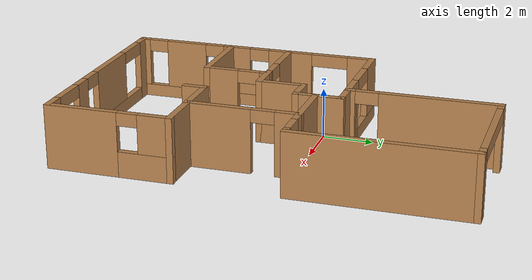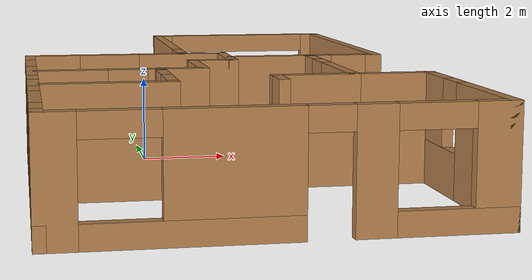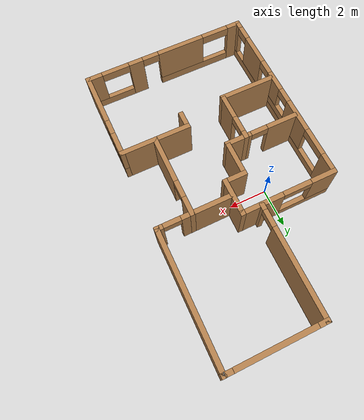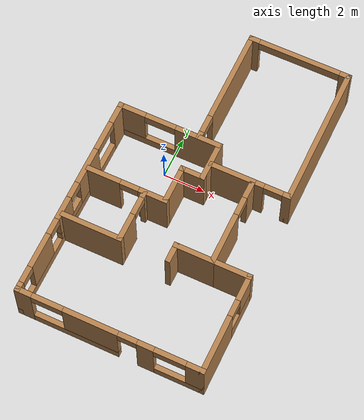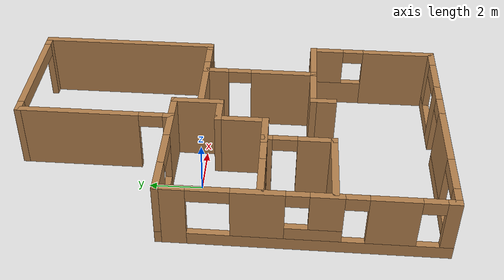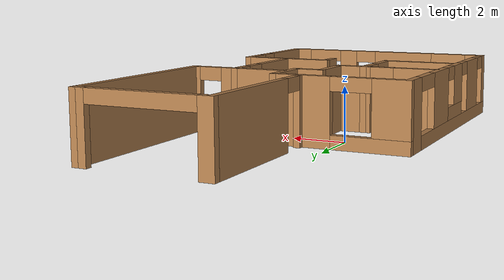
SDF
<?xml version='1.0'?>
<sdf version='1.6'>
  <model name='mybuilding'>
    <pose frame=''>1.625 -0.875 0 0 -0 0</pose>
    <link name='Wall_0'>
      <pose frame=''>1.95 7.875 0 0 -0 3.14159</pose>
      <visual name='Wall_0_Visual_0'>
        <pose frame=''>-2.27407 0 1.25 0 -0 0</pose>
        <geometry>
          <box>
            <size>0.551856 0.25 2.5</size>
          </box>
        </geometry>
        <material>
          <script>
            <uri>file://media/materials/scripts/gazebo.material</uri>
            <name>Gazebo/Wood</name>
          </script>
          <ambient>1 1 1 1</ambient>
        </material>
        <meta>
          <layer>0</layer>
        </meta>
      </visual>
      <collision name='Wall_0_Collision_0'>
        <geometry>
          <box>
            <size>0.551856 0.25 2.5</size>
          </box>
        </geometry>
        <pose frame=''>-2.27407 0 1.25 0 -0 0</pose>
      </collision>
      <visual name='Wall_0_Visual_1'>
        <pose frame=''>2.27593 0 1.25 0 -0 0</pose>
        <geometry>
          <box>
            <size>0.548144 0.25 2.5</size>
          </box>
        </geometry>
        <material>
          <script>
            <uri>file://media/materials/scripts/gazebo.material</uri>
            <name>Gazebo/Wood</name>
          </script>
          <ambient>1 1 1 1</ambient>
        </material>
        <meta>
          <layer>0</layer>
        </meta>
      </visual>
      <collision name='Wall_0_Collision_1'>
        <geometry>
          <box>
            <size>0.548144 0.25 2.5</size>
          </box>
        </geometry>
        <pose frame=''>2.27593 0 1.25 0 -0 0</pose>
      </collision>
      <visual name='Wall_0_Visual_2'>
        <pose frame=''>0.001856 0 2.25 0 -0 0</pose>
        <geometry>
          <box>
            <size>4 0.25 0.5</size>
          </box>
        </geometry>
        <material>
          <script>
            <uri>file://media/materials/scripts/gazebo.material</uri>
            <name>Gazebo/Wood</name>
          </script>
          <ambient>1 1 1 1</ambient>
        </material>
        <meta>
          <layer>0</layer>
        </meta>
      </visual>
      <collision name='Wall_0_Collision_2'>
        <geometry>
          <box>
            <size>4 0.25 0.5</size>
          </box>
        </geometry>
        <pose frame=''>0.001856 0 2.25 0 -0 0</pose>
      </collision>
    </link>
    <link name='Wall_1'>
      <pose frame=''>-0.475 5 0 0 0 -1.5708</pose>
      <visual name='Wall_1_Visual_0'>
        <pose frame=''>-0.6625 0 1.25 0 -0 0</pose>
        <geometry>
          <box>
            <size>4.675 0.25 2.5</size>
          </box>
        </geometry>
        <material>
          <script>
            <uri>file://media/materials/scripts/gazebo.material</uri>
            <name>Gazebo/Wood</name>
          </script>
          <ambient>1 1 1 1</ambient>
        </material>
        <meta>
          <layer>0</layer>
        </meta>
      </visual>
      <collision name='Wall_1_Collision_0'>
        <geometry>
          <box>
            <size>4.675 0.25 2.5</size>
          </box>
        </geometry>
        <pose frame=''>-0.6625 0 1.25 0 -0 0</pose>
      </collision>
      <visual name='Wall_1_Visual_1'>
        <pose frame=''>2.7875 0 1.25 0 -0 0</pose>
        <geometry>
          <box>
            <size>0.425 0.25 2.5</size>
          </box>
        </geometry>
        <material>
          <script>
            <uri>file://media/materials/scripts/gazebo.material</uri>
            <name>Gazebo/Wood</name>
          </script>
          <ambient>1 1 1 1</ambient>
        </material>
        <meta>
          <layer>0</layer>
        </meta>
      </visual>
      <collision name='Wall_1_Collision_1'>
        <geometry>
          <box>
            <size>0.425 0.25 2.5</size>
          </box>
        </geometry>
        <pose frame=''>2.7875 0 1.25 0 -0 0</pose>
      </collision>
      <visual name='Wall_1_Visual_2'>
        <pose frame=''>2.125 0 2.25 0 -0 0</pose>
        <geometry>
          <box>
            <size>0.9 0.25 0.5</size>
          </box>
        </geometry>
        <material>
          <script>
            <uri>file://media/materials/scripts/gazebo.material</uri>
            <name>Gazebo/Wood</name>
          </script>
          <ambient>1 1 1 1</ambient>
        </material>
        <meta>
          <layer>0</layer>
        </meta>
      </visual>
      <collision name='Wall_1_Collision_2'>
        <geometry>
          <box>
            <size>0.9 0.25 0.5</size>
          </box>
        </geometry>
        <pose frame=''>2.125 0 2.25 0 -0 0</pose>
      </collision>
    </link>
    <link name='Wall_10'>
      <pose frame=''>-4.375 -2.875 0 0 0 -1.5708</pose>
      <visual name='Wall_10_Visual_0'>
        <pose frame=''>-4.56217 0 1.25 0 -0 0</pose>
        <geometry>
          <box>
            <size>1.12566 0.25 2.5</size>
          </box>
        </geometry>
        <material>
          <script>
            <uri>file://media/materials/scripts/gazebo.material</uri>
            <name>Gazebo/Wood</name>
          </script>
          <ambient>1 1 1 1</ambient>
        </material>
        <meta>
          <layer>0</layer>
        </meta>
      </visual>
      <collision name='Wall_10_Collision_0'>
        <geometry>
          <box>
            <size>1.12566 0.25 2.5</size>
          </box>
        </geometry>
        <pose frame=''>-4.56217 0 1.25 0 -0 0</pose>
      </collision>
      <visual name='Wall_10_Visual_1'>
        <pose frame=''>0.562832 0 0.25 0 -0 0</pose>
        <geometry>
          <box>
            <size>9.12434 0.25 0.5</size>
          </box>
        </geometry>
        <material>
          <script>
            <uri>file://media/materials/scripts/gazebo.material</uri>
            <name>Gazebo/Wood</name>
          </script>
          <ambient>1 1 1 1</ambient>
        </material>
        <meta>
          <layer>0</layer>
        </meta>
      </visual>
      <collision name='Wall_10_Collision_1'>
        <geometry>
          <box>
            <size>9.12434 0.25 0.5</size>
          </box>
        </geometry>
        <pose frame=''>0.562832 0 0.25 0 -0 0</pose>
      </collision>
      <visual name='Wall_10_Visual_2'>
        <pose frame=''>-1.57467 0 1.5 0 -0 0</pose>
        <geometry>
          <box>
            <size>1.84934 0.25 2</size>
          </box>
        </geometry>
        <material>
          <script>
            <uri>file://media/materials/scripts/gazebo.material</uri>
            <name>Gazebo/Wood</name>
          </script>
          <ambient>1 1 1 1</ambient>
        </material>
        <meta>
          <layer>0</layer>
        </meta>
      </visual>
      <collision name='Wall_10_Collision_2'>
        <geometry>
          <box>
            <size>1.84934 0.25 2</size>
          </box>
        </geometry>
        <pose frame=''>-1.57467 0 1.5 0 -0 0</pose>
      </collision>
      <visual name='Wall_10_Visual_3'>
        <pose frame=''>2.98281 0 1.5 0 -0 0</pose>
        <geometry>
          <box>
            <size>1.72544 0.25 2</size>
          </box>
        </geometry>
        <material>
          <script>
            <uri>file://media/materials/scripts/gazebo.material</uri>
            <name>Gazebo/Wood</name>
          </script>
          <ambient>1 1 1 1</ambient>
        </material>
        <meta>
          <layer>0</layer>
        </meta>
      </visual>
      <collision name='Wall_10_Collision_3'>
        <geometry>
          <box>
            <size>1.72544 0.25 2</size>
          </box>
        </geometry>
        <pose frame=''>2.98281 0 1.5 0 -0 0</pose>
      </collision>
      <visual name='Wall_10_Visual_4'>
        <pose frame=''>4.88526 0 1.5 0 -0 0</pose>
        <geometry>
          <box>
            <size>0.479475 0.25 2</size>
          </box>
        </geometry>
        <material>
          <script>
            <uri>file://media/materials/scripts/gazebo.material</uri>
            <name>Gazebo/Wood</name>
          </script>
          <ambient>1 1 1 1</ambient>
        </material>
        <meta>
          <layer>0</layer>
        </meta>
      </visual>
      <collision name='Wall_10_Collision_4'>
        <geometry>
          <box>
            <size>0.479475 0.25 2</size>
          </box>
        </geometry>
        <pose frame=''>4.88526 0 1.5 0 -0 0</pose>
      </collision>
      <visual name='Wall_10_Visual_5'>
        <pose frame=''>0.335043 0 0.75 0 -0 0</pose>
        <geometry>
          <box>
            <size>1.97009 0.25 0.5</size>
          </box>
        </geometry>
        <material>
          <script>
            <uri>file://media/materials/scripts/gazebo.material</uri>
            <name>Gazebo/Wood</name>
          </script>
          <ambient>1 1 1 1</ambient>
        </material>
        <meta>
          <layer>0</layer>
        </meta>
      </visual>
      <collision name='Wall_10_Collision_5'>
        <geometry>
          <box>
            <size>1.97009 0.25 0.5</size>
          </box>
        </geometry>
        <pose frame=''>0.335043 0 0.75 0 -0 0</pose>
      </collision>
      <visual name='Wall_10_Visual_6'>
        <pose frame=''>0.735043 0 1.75 0 -0 0</pose>
        <geometry>
          <box>
            <size>1.17009 0.25 1.5</size>
          </box>
        </geometry>
        <material>
          <script>
            <uri>file://media/materials/scripts/gazebo.material</uri>
            <name>Gazebo/Wood</name>
          </script>
          <ambient>1 1 1 1</ambient>
        </material>
        <meta>
          <layer>0</layer>
        </meta>
      </visual>
      <collision name='Wall_10_Collision_6'>
        <geometry>
          <box>
            <size>1.17009 0.25 1.5</size>
          </box>
        </geometry>
        <pose frame=''>0.735043 0 1.75 0 -0 0</pose>
      </collision>
      <visual name='Wall_10_Visual_7'>
        <pose frame=''>-3.24934 0 2.25 0 -0 0</pose>
        <geometry>
          <box>
            <size>1.5 0.25 0.5</size>
          </box>
        </geometry>
        <material>
          <script>
            <uri>file://media/materials/scripts/gazebo.material</uri>
            <name>Gazebo/Wood</name>
          </script>
          <ambient>1 1 1 1</ambient>
        </material>
        <meta>
          <layer>0</layer>
        </meta>
      </visual>
      <collision name='Wall_10_Collision_7'>
        <geometry>
          <box>
            <size>1.5 0.25 0.5</size>
          </box>
        </geometry>
        <pose frame=''>-3.24934 0 2.25 0 -0 0</pose>
      </collision>
      <visual name='Wall_10_Visual_8'>
        <pose frame=''>-0.25 0 2.25 0 -0 0</pose>
        <geometry>
          <box>
            <size>0.8 0.25 0.5</size>
          </box>
        </geometry>
        <material>
          <script>
            <uri>file://media/materials/scripts/gazebo.material</uri>
            <name>Gazebo/Wood</name>
          </script>
          <ambient>1 1 1 1</ambient>
        </material>
        <meta>
          <layer>0</layer>
        </meta>
      </visual>
      <collision name='Wall_10_Collision_8'>
        <geometry>
          <box>
            <size>0.8 0.25 0.5</size>
          </box>
        </geometry>
        <pose frame=''>-0.25 0 2.25 0 -0 0</pose>
      </collision>
      <visual name='Wall_10_Visual_9'>
        <pose frame=''>4.24552 0 2.25 0 -0 0</pose>
        <geometry>
          <box>
            <size>0.8 0.25 0.5</size>
          </box>
        </geometry>
        <material>
          <script>
            <uri>file://media/materials/scripts/gazebo.material</uri>
            <name>Gazebo/Wood</name>
          </script>
          <ambient>1 1 1 1</ambient>
        </material>
        <meta>
          <layer>0</layer>
        </meta>
      </visual>
      <collision name='Wall_10_Collision_9'>
        <geometry>
          <box>
            <size>0.8 0.25 0.5</size>
          </box>
        </geometry>
        <pose frame=''>4.24552 0 2.25 0 -0 0</pose>
      </collision>
      <visual name='Wall_10_Visual_10'>
        <pose frame=''>1.72009 0 2.25 0 -0 0</pose>
        <geometry>
          <box>
            <size>0.8 0.25 0.5</size>
          </box>
        </geometry>
        <material>
          <script>
            <uri>file://media/materials/scripts/gazebo.material</uri>
            <name>Gazebo/Wood</name>
          </script>
          <ambient>1 1 1 1</ambient>
        </material>
        <meta>
          <layer>0</layer>
        </meta>
      </visual>
      <collision name='Wall_10_Collision_10'>
        <geometry>
          <box>
            <size>0.8 0.25 0.5</size>
          </box>
        </geometry>
        <pose frame=''>1.72009 0 2.25 0 -0 0</pose>
      </collision>
    </link>
    <link name='Wall_11'>
      <pose frame=''>0 -7.875 0 0 -0 0</pose>
      <visual name='Wall_11_Visual_0'>
        <pose frame=''>-4.09506 0 1.25 0 -0 0</pose>
        <geometry>
          <box>
            <size>0.809873 0.25 2.5</size>
          </box>
        </geometry>
        <material>
          <script>
            <uri>file://media/materials/scripts/gazebo.material</uri>
            <name>Gazebo/Wood</name>
          </script>
          <ambient>1 1 1 1</ambient>
        </material>
        <meta>
          <layer>0</layer>
        </meta>
      </visual>
      <collision name='Wall_11_Collision_0'>
        <geometry>
          <box>
            <size>0.809873 0.25 2.5</size>
          </box>
        </geometry>
        <pose frame=''>-4.09506 0 1.25 0 -0 0</pose>
      </collision>
      <visual name='Wall_11_Visual_1'>
        <pose frame=''>1.7214 0 1.25 0 -0 0</pose>
        <geometry>
          <box>
            <size>0.792805 0.25 2.5</size>
          </box>
        </geometry>
        <material>
          <script>
            <uri>file://media/materials/scripts/gazebo.material</uri>
            <name>Gazebo/Wood</name>
          </script>
          <ambient>1 1 1 1</ambient>
        </material>
        <meta>
          <layer>0</layer>
        </meta>
      </visual>
      <collision name='Wall_11_Collision_1'>
        <geometry>
          <box>
            <size>0.792805 0.25 2.5</size>
          </box>
        </geometry>
        <pose frame=''>1.7214 0 1.25 0 -0 0</pose>
      </collision>
      <visual name='Wall_11_Visual_2'>
        <pose frame=''>-1.63256 0 0.25 0 -0 0</pose>
        <geometry>
          <box>
            <size>4.11513 0.25 0.5</size>
          </box>
        </geometry>
        <material>
          <script>
            <uri>file://media/materials/scripts/gazebo.material</uri>
            <name>Gazebo/Wood</name>
          </script>
          <ambient>1 1 1 1</ambient>
        </material>
        <meta>
          <layer>0</layer>
        </meta>
      </visual>
      <collision name='Wall_11_Collision_2'>
        <geometry>
          <box>
            <size>4.11513 0.25 0.5</size>
          </box>
        </geometry>
        <pose frame=''>-1.63256 0 0.25 0 -0 0</pose>
      </collision>
      <visual name='Wall_11_Visual_3'>
        <pose frame=''>3.3089 0 0.25 0 -0 0</pose>
        <geometry>
          <box>
            <size>2.38219 0.25 0.5</size>
          </box>
        </geometry>
        <material>
          <script>
            <uri>file://media/materials/scripts/gazebo.material</uri>
            <name>Gazebo/Wood</name>
          </script>
          <ambient>1 1 1 1</ambient>
        </material>
        <meta>
          <layer>0</layer>
        </meta>
      </visual>
      <collision name='Wall_11_Collision_3'>
        <geometry>
          <box>
            <size>2.38219 0.25 0.5</size>
          </box>
        </geometry>
        <pose frame=''>3.3089 0 0.25 0 -0 0</pose>
      </collision>
      <visual name='Wall_11_Visual_4'>
        <pose frame=''>-0.882564 0 1.5 0 -0 0</pose>
        <geometry>
          <box>
            <size>2.61513 0.25 2</size>
          </box>
        </geometry>
        <material>
          <script>
            <uri>file://media/materials/scripts/gazebo.material</uri>
            <name>Gazebo/Wood</name>
          </script>
          <ambient>1 1 1 1</ambient>
        </material>
        <meta>
          <layer>0</layer>
        </meta>
      </visual>
      <collision name='Wall_11_Collision_4'>
        <geometry>
          <box>
            <size>2.61513 0.25 2</size>
          </box>
        </geometry>
        <pose frame=''>-0.882564 0 1.5 0 -0 0</pose>
      </collision>
      <visual name='Wall_11_Visual_5'>
        <pose frame=''>-0.882564 0 1.5 0 -0 0</pose>
        <geometry>
          <box>
            <size>2.61513 0.25 2</size>
          </box>
        </geometry>
        <material>
          <script>
            <uri>file://media/materials/scripts/gazebo.material</uri>
            <name>Gazebo/Wood</name>
          </script>
          <ambient>1 1 1 1</ambient>
        </material>
        <meta>
          <layer>0</layer>
        </meta>
      </visual>
      <collision name='Wall_11_Collision_5'>
        <geometry>
          <box>
            <size>2.61513 0.25 2</size>
          </box>
        </geometry>
        <pose frame=''>-0.882564 0 1.5 0 -0 0</pose>
      </collision>
      <visual name='Wall_11_Visual_6'>
        <pose frame=''>4.0589 0 1.5 0 -0 0</pose>
        <geometry>
          <box>
            <size>0.882195 0.25 2</size>
          </box>
        </geometry>
        <material>
          <script>
            <uri>file://media/materials/scripts/gazebo.material</uri>
            <name>Gazebo/Wood</name>
          </script>
          <ambient>1 1 1 1</ambient>
        </material>
        <meta>
          <layer>0</layer>
        </meta>
      </visual>
      <collision name='Wall_11_Collision_6'>
        <geometry>
          <box>
            <size>0.882195 0.25 2</size>
          </box>
        </geometry>
        <pose frame=''>4.0589 0 1.5 0 -0 0</pose>
      </collision>
      <visual name='Wall_11_Visual_7'>
        <pose frame=''>-2.94013 0 2.25 0 -0 0</pose>
        <geometry>
          <box>
            <size>1.5 0.25 0.5</size>
          </box>
        </geometry>
        <material>
          <script>
            <uri>file://media/materials/scripts/gazebo.material</uri>
            <name>Gazebo/Wood</name>
          </script>
          <ambient>1 1 1 1</ambient>
        </material>
        <meta>
          <layer>0</layer>
        </meta>
      </visual>
      <collision name='Wall_11_Collision_7'>
        <geometry>
          <box>
            <size>1.5 0.25 0.5</size>
          </box>
        </geometry>
        <pose frame=''>-2.94013 0 2.25 0 -0 0</pose>
      </collision>
      <visual name='Wall_11_Visual_8'>
        <pose frame=''>2.86781 0 2.25 0 -0 0</pose>
        <geometry>
          <box>
            <size>1.5 0.25 0.5</size>
          </box>
        </geometry>
        <material>
          <script>
            <uri>file://media/materials/scripts/gazebo.material</uri>
            <name>Gazebo/Wood</name>
          </script>
          <ambient>1 1 1 1</ambient>
        </material>
        <meta>
          <layer>0</layer>
        </meta>
      </visual>
      <collision name='Wall_11_Collision_8'>
        <geometry>
          <box>
            <size>1.5 0.25 0.5</size>
          </box>
        </geometry>
        <pose frame=''>2.86781 0 2.25 0 -0 0</pose>
      </collision>
      <visual name='Wall_11_Visual_9'>
        <pose frame=''>0.875 0 2.25 0 -0 0</pose>
        <geometry>
          <box>
            <size>0.9 0.25 0.5</size>
          </box>
        </geometry>
        <material>
          <script>
            <uri>file://media/materials/scripts/gazebo.material</uri>
            <name>Gazebo/Wood</name>
          </script>
          <ambient>1 1 1 1</ambient>
        </material>
        <meta>
          <layer>0</layer>
        </meta>
      </visual>
      <collision name='Wall_11_Collision_9'>
        <geometry>
          <box>
            <size>0.9 0.25 0.5</size>
          </box>
        </geometry>
        <pose frame=''>0.875 0 2.25 0 -0 0</pose>
      </collision>
      <visual name='Wall_11_Visual_10'>
        <pose frame=''>0.875 0 2.25 0 -0 0</pose>
        <geometry>
          <box>
            <size>0.9 0.25 0.5</size>
          </box>
        </geometry>
        <material>
          <script>
            <uri>file://media/materials/scripts/gazebo.material</uri>
            <name>Gazebo/Wood</name>
          </script>
          <ambient>1 1 1 1</ambient>
        </material>
        <meta>
          <layer>0</layer>
        </meta>
      </visual>
      <collision name='Wall_11_Collision_10'>
        <geometry>
          <box>
            <size>0.9 0.25 0.5</size>
          </box>
        </geometry>
        <pose frame=''>0.875 0 2.25 0 -0 0</pose>
      </collision>
    </link>
    <link name='Wall_12'>
      <pose frame=''>4.375 -5.5 0 0 -0 1.5708</pose>
      <visual name='Wall_12_Visual_0'>
        <pose frame=''>-1.06859 0 1.25 0 -0 0</pose>
        <geometry>
          <box>
            <size>2.86282 0.25 2.5</size>
          </box>
        </geometry>
        <material>
          <script>
            <uri>file://media/materials/scripts/gazebo.material</uri>
            <name>Gazebo/Wood</name>
          </script>
          <ambient>1 1 1 1</ambient>
        </material>
        <meta>
          <layer>0</layer>
        </meta>
      </visual>
      <collision name='Wall_12_Collision_0'>
        <geometry>
          <box>
            <size>2.86282 0.25 2.5</size>
          </box>
        </geometry>
        <pose frame=''>-1.06859 0 1.25 0 -0 0</pose>
      </collision>
      <visual name='Wall_12_Visual_1'>
        <pose frame=''>1.43141 0 0.5 0 -0 0</pose>
        <geometry>
          <box>
            <size>2.13718 0.25 1</size>
          </box>
        </geometry>
        <material>
          <script>
            <uri>file://media/materials/scripts/gazebo.material</uri>
            <name>Gazebo/Wood</name>
          </script>
          <ambient>1 1 1 1</ambient>
        </material>
        <meta>
          <layer>0</layer>
        </meta>
      </visual>
      <collision name='Wall_12_Collision_1'>
        <geometry>
          <box>
            <size>2.13718 0.25 1</size>
          </box>
        </geometry>
        <pose frame=''>1.43141 0 0.5 0 -0 0</pose>
      </collision>
      <visual name='Wall_12_Visual_2'>
        <pose frame=''>1.83141 0 1.75 0 -0 0</pose>
        <geometry>
          <box>
            <size>1.33718 0.25 1.5</size>
          </box>
        </geometry>
        <material>
          <script>
            <uri>file://media/materials/scripts/gazebo.material</uri>
            <name>Gazebo/Wood</name>
          </script>
          <ambient>1 1 1 1</ambient>
        </material>
        <meta>
          <layer>0</layer>
        </meta>
      </visual>
      <collision name='Wall_12_Collision_2'>
        <geometry>
          <box>
            <size>1.33718 0.25 1.5</size>
          </box>
        </geometry>
        <pose frame=''>1.83141 0 1.75 0 -0 0</pose>
      </collision>
      <visual name='Wall_12_Visual_3'>
        <pose frame=''>0.762824 0 2.25 0 -0 0</pose>
        <geometry>
          <box>
            <size>0.8 0.25 0.5</size>
          </box>
        </geometry>
        <material>
          <script>
            <uri>file://media/materials/scripts/gazebo.material</uri>
            <name>Gazebo/Wood</name>
          </script>
          <ambient>1 1 1 1</ambient>
        </material>
        <meta>
          <layer>0</layer>
        </meta>
      </visual>
      <collision name='Wall_12_Collision_3'>
        <geometry>
          <box>
            <size>0.8 0.25 0.5</size>
          </box>
        </geometry>
        <pose frame=''>0.762824 0 2.25 0 -0 0</pose>
      </collision>
    </link>
    <link name='Wall_13'>
      <collision name='Wall_13_Collision'>
        <geometry>
          <box>
            <size>2 0.25 2.5</size>
          </box>
        </geometry>
        <pose frame=''>0 0 1.25 0 -0 0</pose>
      </collision>
      <visual name='Wall_13_Visual'>
        <pose frame=''>0 0 1.25 0 -0 0</pose>
        <geometry>
          <box>
            <size>2 0.25 2.5</size>
          </box>
        </geometry>
        <material>
          <script>
            <uri>file://media/materials/scripts/gazebo.material</uri>
            <name>Gazebo/Wood</name>
          </script>
          <ambient>1 1 1 1</ambient>
        </material>
        <meta>
          <layer>0</layer>
        </meta>
      </visual>
      <pose frame=''>3.5 -3.125 0 0 -0 3.14159</pose>
    </link>
    <link name='Wall_14'>
      <pose frame=''>2.625 -1 0 0 -0 1.5708</pose>
      <visual name='Wall_14_Visual_0'>
        <pose frame=''>-0.957655 0 1.25 0 -0 0</pose>
        <geometry>
          <box>
            <size>2.58469 0.25 2.5</size>
          </box>
        </geometry>
        <material>
          <script>
            <uri>file://media/materials/scripts/gazebo.material</uri>
            <name>Gazebo/Wood</name>
          </script>
          <ambient>1 1 1 1</ambient>
        </material>
        <meta>
          <layer>0</layer>
        </meta>
      </visual>
      <collision name='Wall_14_Collision_0'>
        <geometry>
          <box>
            <size>2.58469 0.25 2.5</size>
          </box>
        </geometry>
        <pose frame=''>-0.957655 0 1.25 0 -0 0</pose>
      </collision>
      <visual name='Wall_14_Visual_1'>
        <pose frame=''>1.74235 0 1.25 0 -0 0</pose>
        <geometry>
          <box>
            <size>1.01531 0.25 2.5</size>
          </box>
        </geometry>
        <material>
          <script>
            <uri>file://media/materials/scripts/gazebo.material</uri>
            <name>Gazebo/Wood</name>
          </script>
          <ambient>1 1 1 1</ambient>
        </material>
        <meta>
          <layer>0</layer>
        </meta>
      </visual>
      <collision name='Wall_14_Collision_1'>
        <geometry>
          <box>
            <size>1.01531 0.25 2.5</size>
          </box>
        </geometry>
        <pose frame=''>1.74235 0 1.25 0 -0 0</pose>
      </collision>
      <visual name='Wall_14_Visual_2'>
        <pose frame=''>0.78469 0 2.25 0 -0 0</pose>
        <geometry>
          <box>
            <size>0.9 0.25 0.5</size>
          </box>
        </geometry>
        <material>
          <script>
            <uri>file://media/materials/scripts/gazebo.material</uri>
            <name>Gazebo/Wood</name>
          </script>
          <ambient>1 1 1 1</ambient>
        </material>
        <meta>
          <layer>0</layer>
        </meta>
      </visual>
      <collision name='Wall_14_Collision_2'>
        <geometry>
          <box>
            <size>0.9 0.25 0.5</size>
          </box>
        </geometry>
        <pose frame=''>0.78469 0 2.25 0 -0 0</pose>
      </collision>
    </link>
    <link name='Wall_153'>
      <pose frame=''>-1.475 -2.625 0 0 0 -1.5708</pose>
      <visual name='Wall_153_Visual_0'>
        <pose frame=''>-1.1625 0 1.25 0 -0 0</pose>
        <geometry>
          <box>
            <size>0.425 0.25 2.5</size>
          </box>
        </geometry>
        <material>
          <script>
            <uri>file://media/materials/scripts/gazebo.material</uri>
            <name>Gazebo/Wood</name>
          </script>
          <ambient>1 1 1 1</ambient>
        </material>
        <meta>
          <layer>0</layer>
        </meta>
      </visual>
      <collision name='Wall_153_Collision_0'>
        <geometry>
          <box>
            <size>0.425 0.25 2.5</size>
          </box>
        </geometry>
        <pose frame=''>-1.1625 0 1.25 0 -0 0</pose>
      </collision>
      <visual name='Wall_153_Visual_1'>
        <pose frame=''>0.6625 0 1.25 0 -0 0</pose>
        <geometry>
          <box>
            <size>1.425 0.25 2.5</size>
          </box>
        </geometry>
        <material>
          <script>
            <uri>file://media/materials/scripts/gazebo.material</uri>
            <name>Gazebo/Wood</name>
          </script>
          <ambient>1 1 1 1</ambient>
        </material>
        <meta>
          <layer>0</layer>
        </meta>
      </visual>
      <collision name='Wall_153_Collision_1'>
        <geometry>
          <box>
            <size>1.425 0.25 2.5</size>
          </box>
        </geometry>
        <pose frame=''>0.6625 0 1.25 0 -0 0</pose>
      </collision>
      <visual name='Wall_153_Visual_2'>
        <pose frame=''>-0.5 0 2.25 0 -0 0</pose>
        <geometry>
          <box>
            <size>0.9 0.25 0.5</size>
          </box>
        </geometry>
        <material>
          <script>
            <uri>file://media/materials/scripts/gazebo.material</uri>
            <name>Gazebo/Wood</name>
          </script>
          <ambient>1 1 1 1</ambient>
        </material>
        <meta>
          <layer>0</layer>
        </meta>
      </visual>
      <collision name='Wall_153_Collision_2'>
        <geometry>
          <box>
            <size>0.9 0.25 0.5</size>
          </box>
        </geometry>
        <pose frame=''>-0.5 0 2.25 0 -0 0</pose>
      </collision>
    </link>
    <link name='Wall_154'>
      <collision name='Wall_154_Collision'>
        <geometry>
          <box>
            <size>3 0.25 2.5</size>
          </box>
        </geometry>
        <pose frame=''>0 0 1.25 0 -0 0</pose>
      </collision>
      <visual name='Wall_154_Visual'>
        <pose frame=''>0 0 1.25 0 -0 0</pose>
        <geometry>
          <box>
            <size>3 0.25 2.5</size>
          </box>
        </geometry>
        <material>
          <script>
            <uri>file://media/materials/scripts/gazebo.material</uri>
            <name>Gazebo/Wood</name>
          </script>
          <ambient>1 1 1 1</ambient>
        </material>
        <meta>
          <layer>0</layer>
        </meta>
      </visual>
      <pose frame=''>-2.85 -3.875 0 0 -0 3.14159</pose>
    </link>
    <link name='Wall_156'>
      <collision name='Wall_156_Collision'>
        <geometry>
          <box>
            <size>2 0.25 2.5</size>
          </box>
        </geometry>
        <pose frame=''>0 0 1.25 0 -0 0</pose>
      </collision>
      <visual name='Wall_156_Visual'>
        <pose frame=''>0 0 1.25 0 -0 0</pose>
        <geometry>
          <box>
            <size>2 0.25 2.5</size>
          </box>
        </geometry>
        <material>
          <script>
            <uri>file://media/materials/scripts/gazebo.material</uri>
            <name>Gazebo/Wood</name>
          </script>
          <ambient>1 1 1 1</ambient>
        </material>
        <meta>
          <layer>0</layer>
        </meta>
      </visual>
      <pose frame=''>1.75 -3.125 0 0 -0 3.14159</pose>
    </link>
    <link name='Wall_157'>
      <collision name='Wall_157_Collision'>
        <geometry>
          <box>
            <size>1 0.25 2.5</size>
          </box>
        </geometry>
        <pose frame=''>0 0 1.25 0 -0 0</pose>
      </collision>
      <visual name='Wall_157_Visual'>
        <pose frame=''>0 0 1.25 0 -0 0</pose>
        <geometry>
          <box>
            <size>1 0.25 2.5</size>
          </box>
        </geometry>
        <material>
          <script>
            <uri>file://media/materials/scripts/gazebo.material</uri>
            <name>Gazebo/Wood</name>
          </script>
          <ambient>1 1 1 1</ambient>
        </material>
        <meta>
          <layer>0</layer>
        </meta>
      </visual>
      <pose frame=''>0.875 -3.5 0 0 0 -1.5708</pose>
    </link>
    <link name='Wall_16'>
      <collision name='Wall_16_Collision'>
        <geometry>
          <box>
            <size>7 0.25 2.5</size>
          </box>
        </geometry>
        <pose frame=''>0 0 1.25 0 -0 0</pose>
      </collision>
      <visual name='Wall_16_Visual'>
        <pose frame=''>0 0 1.25 0 -0 0</pose>
        <geometry>
          <box>
            <size>7 0.25 2.5</size>
          </box>
        </geometry>
        <material>
          <script>
            <uri>file://media/materials/scripts/gazebo.material</uri>
            <name>Gazebo/Wood</name>
          </script>
          <ambient>1 1 1 1</ambient>
        </material>
        <meta>
          <layer>0</layer>
        </meta>
      </visual>
      <pose frame=''>4.375 4.5 0 0 -0 1.5708</pose>
    </link>
    <link name='Wall_17'>
      <collision name='Wall_17_Collision'>
        <geometry>
          <box>
            <size>0.15 0.15 2.5</size>
          </box>
        </geometry>
        <pose frame=''>0 0 1.25 0 -0 0</pose>
      </collision>
      <visual name='Wall_17_Visual'>
        <pose frame=''>0 0 1.25 0 -0 0</pose>
        <geometry>
          <box>
            <size>0.15 0.15 2.5</size>
          </box>
        </geometry>
        <material>
          <script>
            <uri>file://media/materials/scripts/gazebo.material</uri>
            <name>Gazebo/Grey</name>
          </script>
          <ambient>1 1 1 1</ambient>
        </material>
        <meta>
          <layer>0</layer>
        </meta>
      </visual>
      <pose frame=''>4.375 7.83421 0 0 -0 0</pose>
    </link>
    <link name='Wall_18'>
      <collision name='Wall_18_Collision'>
        <geometry>
          <box>
            <size>0.15 0.15 2.5</size>
          </box>
        </geometry>
        <pose frame=''>0 0 1.25 0 -0 0</pose>
      </collision>
      <visual name='Wall_18_Visual'>
        <pose frame=''>0 0 1.25 0 -0 0</pose>
        <geometry>
          <box>
            <size>0.15 0.15 2.5</size>
          </box>
        </geometry>
        <material>
          <script>
            <uri>file://media/materials/scripts/gazebo.material</uri>
            <name>Gazebo/Grey</name>
          </script>
          <ambient>1 1 1 1</ambient>
        </material>
        <meta>
          <layer>0</layer>
        </meta>
      </visual>
      <pose frame=''>4.375 7.83421 0 0 -0 0</pose>
    </link>
    <link name='Wall_20'>
      <collision name='Wall_20_Collision'>
        <geometry>
          <box>
            <size>2 0.25 2.5</size>
          </box>
        </geometry>
        <pose frame=''>0 0 1.25 0 -0 0</pose>
      </collision>
      <visual name='Wall_20_Visual'>
        <pose frame=''>0 0 1.25 0 -0 0</pose>
        <geometry>
          <box>
            <size>2 0.25 2.5</size>
          </box>
        </geometry>
        <material>
          <script>
            <uri>file://media/materials/scripts/gazebo.material</uri>
            <name>Gazebo/Wood</name>
          </script>
          <ambient>1 1 1 1</ambient>
        </material>
        <meta>
          <layer>0</layer>
        </meta>
      </visual>
      <pose frame=''>0.525 1.25 0 0 0 -1.5708</pose>
    </link>
    <link name='Wall_22'>
      <collision name='Wall_22_Collision'>
        <geometry>
          <box>
            <size>2.25 0.25 2.5</size>
          </box>
        </geometry>
        <pose frame=''>0 0 1.25 0 -0 0</pose>
      </collision>
      <visual name='Wall_22_Visual'>
        <pose frame=''>0 0 1.25 0 -0 0</pose>
        <geometry>
          <box>
            <size>2.25 0.25 2.5</size>
          </box>
        </geometry>
        <material>
          <script>
            <uri>file://media/materials/scripts/gazebo.material</uri>
            <name>Gazebo/Wood</name>
          </script>
          <ambient>1 1 1 1</ambient>
        </material>
        <meta>
          <layer>0</layer>
        </meta>
      </visual>
      <pose frame=''>1.625 1.125 0 0 -0 3.14159</pose>
    </link>
    <link name='Wall_24'>
      <pose frame=''>3.5 1.125 0 0 -0 3.14159</pose>
      <visual name='Wall_24_Visual_0'>
        <pose frame=''>-0.7875 0 1.25 0 -0 0</pose>
        <geometry>
          <box>
            <size>0.425 0.25 2.5</size>
          </box>
        </geometry>
        <material>
          <script>
            <uri>file://media/materials/scripts/gazebo.material</uri>
            <name>Gazebo/Wood</name>
          </script>
          <ambient>1 1 1 1</ambient>
        </material>
        <meta>
          <layer>0</layer>
        </meta>
      </visual>
      <collision name='Wall_24_Collision_0'>
        <geometry>
          <box>
            <size>0.425 0.25 2.5</size>
          </box>
        </geometry>
        <pose frame=''>-0.7875 0 1.25 0 -0 0</pose>
      </collision>
      <visual name='Wall_24_Visual_1'>
        <pose frame=''>0.6625 0 1.25 0 -0 0</pose>
        <geometry>
          <box>
            <size>0.675 0.25 2.5</size>
          </box>
        </geometry>
        <material>
          <script>
            <uri>file://media/materials/scripts/gazebo.material</uri>
            <name>Gazebo/Wood</name>
          </script>
          <ambient>1 1 1 1</ambient>
        </material>
        <meta>
          <layer>0</layer>
        </meta>
      </visual>
      <collision name='Wall_24_Collision_1'>
        <geometry>
          <box>
            <size>0.675 0.25 2.5</size>
          </box>
        </geometry>
        <pose frame=''>0.6625 0 1.25 0 -0 0</pose>
      </collision>
      <visual name='Wall_24_Visual_2'>
        <pose frame=''>-0.125 0 2.25 0 -0 0</pose>
        <geometry>
          <box>
            <size>0.9 0.25 0.5</size>
          </box>
        </geometry>
        <material>
          <script>
            <uri>file://media/materials/scripts/gazebo.material</uri>
            <name>Gazebo/Wood</name>
          </script>
          <ambient>1 1 1 1</ambient>
        </material>
        <meta>
          <layer>0</layer>
        </meta>
      </visual>
      <collision name='Wall_24_Collision_2'>
        <geometry>
          <box>
            <size>0.9 0.25 0.5</size>
          </box>
        </geometry>
        <pose frame=''>-0.125 0 2.25 0 -0 0</pose>
      </collision>
    </link>
    <link name='Wall_41'>
      <collision name='Wall_41_Collision'>
        <geometry>
          <box>
            <size>1.25 0.25 2.5</size>
          </box>
        </geometry>
        <pose frame=''>0 0 1.25 0 -0 0</pose>
      </collision>
      <visual name='Wall_41_Visual'>
        <pose frame=''>0 0 1.25 0 -0 0</pose>
        <geometry>
          <box>
            <size>1.25 0.25 2.5</size>
          </box>
        </geometry>
        <material>
          <script>
            <uri>file://media/materials/scripts/gazebo.material</uri>
            <name>Gazebo/Wood</name>
          </script>
          <ambient>1 1 1 1</ambient>
        </material>
        <meta>
          <layer>0</layer>
        </meta>
      </visual>
      <pose frame=''>0.025 0.375 0 0 -0 3.14159</pose>
    </link>
    <link name='Wall_42'>
      <collision name='Wall_42_Collision'>
        <geometry>
          <box>
            <size>2 0.25 2.5</size>
          </box>
        </geometry>
        <pose frame=''>0 0 1.25 0 -0 0</pose>
      </collision>
      <visual name='Wall_42_Visual'>
        <pose frame=''>0 0 1.25 0 -0 0</pose>
        <geometry>
          <box>
            <size>2 0.25 2.5</size>
          </box>
        </geometry>
        <material>
          <script>
            <uri>file://media/materials/scripts/gazebo.material</uri>
            <name>Gazebo/Wood</name>
          </script>
          <ambient>1 1 1 1</ambient>
        </material>
        <meta>
          <layer>0</layer>
        </meta>
      </visual>
      <pose frame=''>-0.475 -0.5 0 0 0 -1.5708</pose>
    </link>
    <link name='Wall_43'>
      <pose frame=''>-2.35 -1.375 0 0 -0 3.14159</pose>
      <visual name='Wall_43_Visual_0'>
        <pose frame=''>-1.29229 0 1.25 0 -0 0</pose>
        <geometry>
          <box>
            <size>1.41542 0.25 2.5</size>
          </box>
        </geometry>
        <material>
          <script>
            <uri>file://media/materials/scripts/gazebo.material</uri>
            <name>Gazebo/Wood</name>
          </script>
          <ambient>1 1 1 1</ambient>
        </material>
        <meta>
          <layer>0</layer>
        </meta>
      </visual>
      <collision name='Wall_43_Collision_0'>
        <geometry>
          <box>
            <size>1.41542 0.25 2.5</size>
          </box>
        </geometry>
        <pose frame=''>-1.29229 0 1.25 0 -0 0</pose>
      </collision>
      <visual name='Wall_43_Visual_1'>
        <pose frame=''>1.15771 0 1.25 0 -0 0</pose>
        <geometry>
          <box>
            <size>1.68457 0.25 2.5</size>
          </box>
        </geometry>
        <material>
          <script>
            <uri>file://media/materials/scripts/gazebo.material</uri>
            <name>Gazebo/Wood</name>
          </script>
          <ambient>1 1 1 1</ambient>
        </material>
        <meta>
          <layer>0</layer>
        </meta>
      </visual>
      <collision name='Wall_43_Collision_1'>
        <geometry>
          <box>
            <size>1.68457 0.25 2.5</size>
          </box>
        </geometry>
        <pose frame=''>1.15771 0 1.25 0 -0 0</pose>
      </collision>
      <visual name='Wall_43_Visual_2'>
        <pose frame=''>-0.134575 0 2.25 0 -0 0</pose>
        <geometry>
          <box>
            <size>0.9 0.25 0.5</size>
          </box>
        </geometry>
        <material>
          <script>
            <uri>file://media/materials/scripts/gazebo.material</uri>
            <name>Gazebo/Wood</name>
          </script>
          <ambient>1 1 1 1</ambient>
        </material>
        <meta>
          <layer>0</layer>
        </meta>
      </visual>
      <collision name='Wall_43_Collision_2'>
        <geometry>
          <box>
            <size>0.9 0.25 0.5</size>
          </box>
        </geometry>
        <pose frame=''>-0.134575 0 2.25 0 -0 0</pose>
      </collision>
    </link>
    <link name='Wall_9'>
      <pose frame=''>-1.925 2.125 0 0 -0 3.14159</pose>
      <visual name='Wall_9_Visual_0'>
        <pose frame=''>-1.4375 0 1.25 0 -0 0</pose>
        <geometry>
          <box>
            <size>2.275 0.25 2.5</size>
          </box>
        </geometry>
        <material>
          <script>
            <uri>file://media/materials/scripts/gazebo.material</uri>
            <name>Gazebo/Wood</name>
          </script>
          <ambient>1 1 1 1</ambient>
        </material>
        <meta>
          <layer>0</layer>
        </meta>
      </visual>
      <collision name='Wall_9_Collision_0'>
        <geometry>
          <box>
            <size>2.275 0.25 2.5</size>
          </box>
        </geometry>
        <pose frame=''>-1.4375 0 1.25 0 -0 0</pose>
      </collision>
      <visual name='Wall_9_Visual_1'>
        <pose frame=''>1.1375 0 0.25 0 -0 0</pose>
        <geometry>
          <box>
            <size>2.875 0.25 0.5</size>
          </box>
        </geometry>
        <material>
          <script>
            <uri>file://media/materials/scripts/gazebo.material</uri>
            <name>Gazebo/Wood</name>
          </script>
          <ambient>1 1 1 1</ambient>
        </material>
        <meta>
          <layer>0</layer>
        </meta>
      </visual>
      <collision name='Wall_9_Collision_1'>
        <geometry>
          <box>
            <size>2.875 0.25 0.5</size>
          </box>
        </geometry>
        <pose frame=''>1.1375 0 0.25 0 -0 0</pose>
      </collision>
      <visual name='Wall_9_Visual_2'>
        <pose frame=''>1.8875 0 1.5 0 -0 0</pose>
        <geometry>
          <box>
            <size>1.375 0.25 2</size>
          </box>
        </geometry>
        <material>
          <script>
            <uri>file://media/materials/scripts/gazebo.material</uri>
            <name>Gazebo/Wood</name>
          </script>
          <ambient>1 1 1 1</ambient>
        </material>
        <meta>
          <layer>0</layer>
        </meta>
      </visual>
      <collision name='Wall_9_Collision_2'>
        <geometry>
          <box>
            <size>1.375 0.25 2</size>
          </box>
        </geometry>
        <pose frame=''>1.8875 0 1.5 0 -0 0</pose>
      </collision>
      <visual name='Wall_9_Visual_3'>
        <pose frame=''>0.45 0 2.25 0 -0 0</pose>
        <geometry>
          <box>
            <size>1.5 0.25 0.5</size>
          </box>
        </geometry>
        <material>
          <script>
            <uri>file://media/materials/scripts/gazebo.material</uri>
            <name>Gazebo/Wood</name>
          </script>
          <ambient>1 1 1 1</ambient>
        </material>
        <meta>
          <layer>0</layer>
        </meta>
      </visual>
      <collision name='Wall_9_Collision_3'>
        <geometry>
          <box>
            <size>1.5 0.25 0.5</size>
          </box>
        </geometry>
        <pose frame=''>0.45 0 2.25 0 -0 0</pose>
      </collision>
    </link>
    <static>1</static>
  </model>
</sdf>
